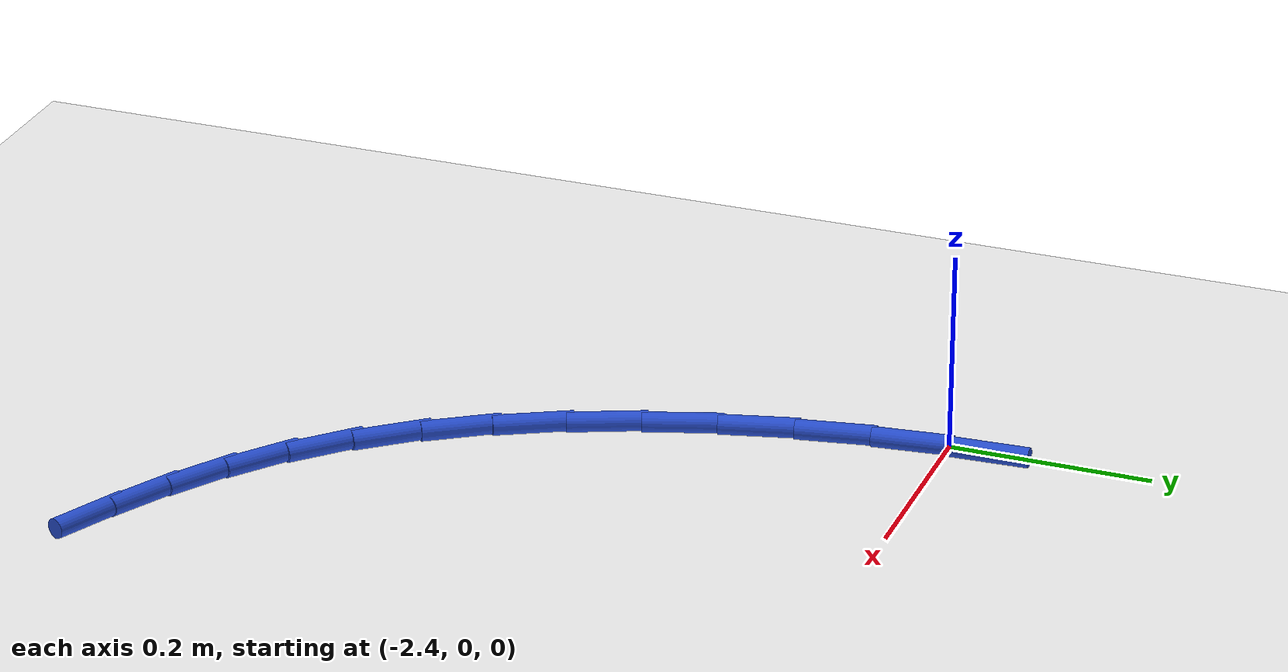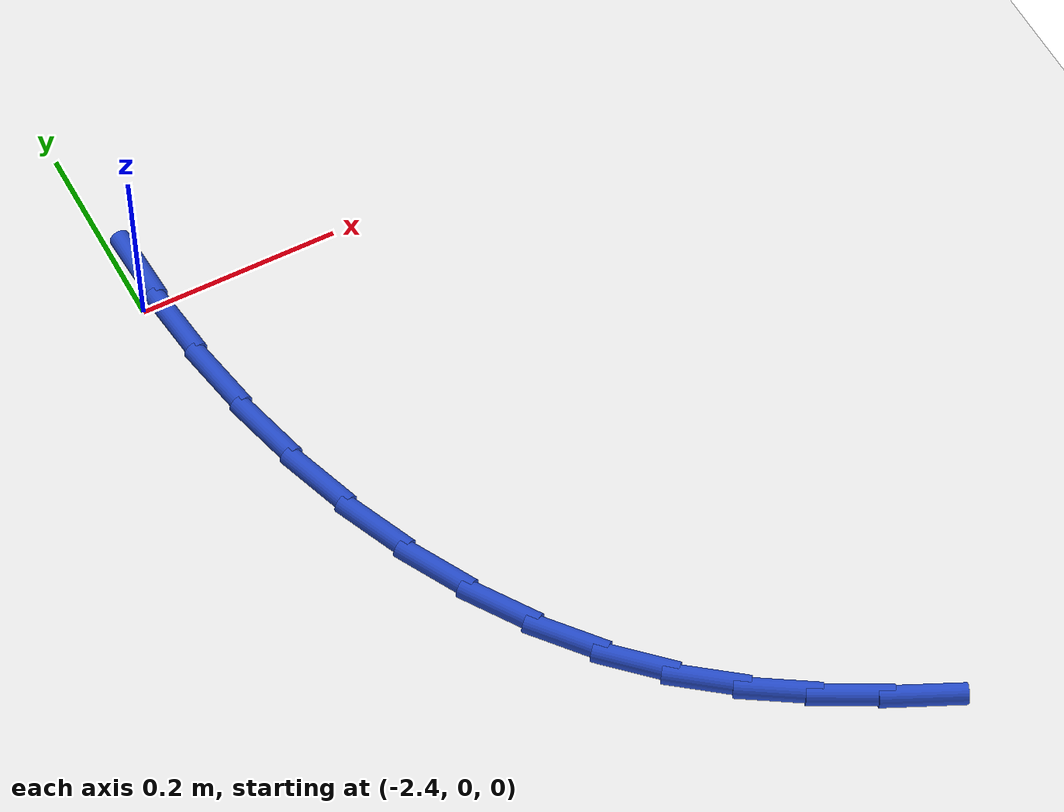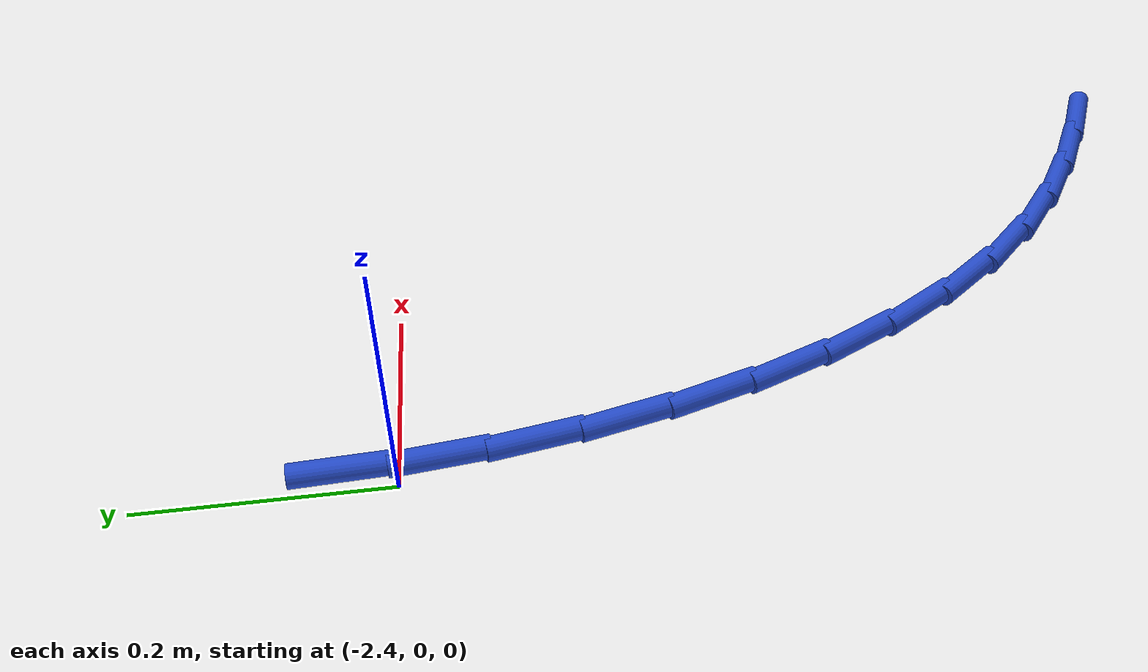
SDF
<sdf version="1.6">
 <world name="default">
  <model name="ground_plane">
   <static>1</static>
   <link name="link">
    <collision name="collision">
     <geometry><plane><normal>0 0 1</normal><size>100 100</size></plane></geometry>
     <surface><friction><ode><mu>100</mu><mu2>50</mu2></ode></friction></surface>
    </collision>
    <visual name="visual">
     <cast_shadows>0</cast_shadows>
     <geometry><plane><normal>0 0 1</normal><size>100 100</size></plane></geometry>
     <material>
      <script><uri>file://media/materials/scripts/gazebo.material</uri><name>Gazebo/WhiteGlow</name></script>
     </material>
    </visual>
   </link>
  </model>
  <model name="line">
   <link name="link_57">
    <pose>-2.3843738134277364 0.04370140006439744 0.01 0 1.57 -1.5233699292212008</pose>
    <collision name="collision">
     <geometry><cylinder><radius>0.01</radius><length>0.08</length></cylinder></geometry>
    </collision>
    <visual name="visual">
     <material>
      <script><name>Gazebo/Blue</name><uri>file://media/materials/scripts/gazebo.material</uri></script>
     </material>
     <geometry><cylinder><radius>0.01</radius><length>0.08</length></cylinder></geometry>
    </visual>
   </link>
   <link name="link_58">
    <pose>-2.38081747310368 -0.0312288861086547 0.01 0 1.57 -1.4555799037515125</pose>
    <collision name="collision">
     <geometry><cylinder><radius>0.01</radius><length>0.08</length></cylinder></geometry>
    </collision>
    <visual name="visual">
     <material>
      <script><name>Gazebo/Blue</name><uri>file://media/materials/scripts/gazebo.material</uri></script>
     </material>
     <geometry><cylinder><radius>0.01</radius><length>0.08</length></cylinder></geometry>
    </visual>
   </link>
   <link name="link_59">
    <pose>-2.3721855642037664 -0.10581616400279886 0.01 0 1.57 -1.387323152833374</pose>
    <collision name="collision">
     <geometry><cylinder><radius>0.01</radius><length>0.08</length></cylinder></geometry>
    </collision>
    <visual name="visual">
     <material>
      <script><name>Gazebo/Blue</name><uri>file://media/materials/scripts/gazebo.material</uri></script>
     </material>
     <geometry><cylinder><radius>0.01</radius><length>0.08</length></cylinder></geometry>
    </visual>
   </link>
   <link name="link_60">
    <pose>-2.358546847052495 -0.1793164745511217 0.01 0 1.57 -1.3171769646896714</pose>
    <collision name="collision">
     <geometry><cylinder><radius>0.01</radius><length>0.08</length></cylinder></geometry>
    </collision>
    <visual name="visual">
     <material>
      <script><name>Gazebo/Blue</name><uri>file://media/materials/scripts/gazebo.material</uri></script>
     </material>
     <geometry><cylinder><radius>0.01</radius><length>0.08</length></cylinder></geometry>
    </visual>
   </link>
   <link name="link_61">
    <pose>-2.339970081974366 -0.25098585868671364 0.01 0 1.57 -1.2436557070648493</pose>
    <collision name="collision">
     <geometry><cylinder><radius>0.01</radius><length>0.08</length></cylinder></geometry>
    </collision>
    <visual name="visual">
     <material>
      <script><name>Gazebo/Blue</name><uri>file://media/materials/scripts/gazebo.material</uri></script>
     </material>
     <geometry><cylinder><radius>0.01</radius><length>0.08</length></cylinder></geometry>
    </visual>
   </link>
   <link name="link_62">
    <pose>-2.3165240292938782 -0.3200803573426613 0.01 0 1.57 -1.1651724793037062</pose>
    <collision name="collision">
     <geometry><cylinder><radius>0.01</radius><length>0.08</length></cylinder></geometry>
    </collision>
    <visual name="visual">
     <material>
      <script><name>Gazebo/Blue</name><uri>file://media/materials/scripts/gazebo.material</uri></script>
     </material>
     <geometry><cylinder><radius>0.01</radius><length>0.08</length></cylinder></geometry>
    </visual>
   </link>
   <link name="link_63">
    <pose>-2.2882774493355336 -0.38585601145205534 0.01 0 1.57 -1.0800215280535146</pose>
    <collision name="collision">
     <geometry><cylinder><radius>0.01</radius><length>0.08</length></cylinder></geometry>
    </collision>
    <visual name="visual">
     <material>
      <script><name>Gazebo/Blue</name><uri>file://media/materials/scripts/gazebo.material</uri></script>
     </material>
     <geometry><cylinder><radius>0.01</radius><length>0.08</length></cylinder></geometry>
    </visual>
   </link>
   <link name="link_64">
    <pose>-2.25529910242383 -0.44756886194798223 0.01 0 1.57 -0.9864039169351552</pose>
    <collision name="collision">
     <geometry><cylinder><radius>0.01</radius><length>0.08</length></cylinder></geometry>
    </collision>
    <visual name="visual">
     <material>
      <script><name>Gazebo/Blue</name><uri>file://media/materials/scripts/gazebo.material</uri></script>
     </material>
     <geometry><cylinder><radius>0.01</radius><length>0.08</length></cylinder></geometry>
    </visual>
   </link>
   <link name="link_65">
    <pose>-2.217657748883269 -0.5044749497635317 0.01 0 1.57 -0.8825343036736734</pose>
    <collision name="collision">
     <geometry><cylinder><radius>0.01</radius><length>0.08</length></cylinder></geometry>
    </collision>
    <visual name="visual">
     <material>
      <script><name>Gazebo/Blue</name><uri>file://media/materials/scripts/gazebo.material</uri></script>
     </material>
     <geometry><cylinder><radius>0.01</radius><length>0.08</length></cylinder></geometry>
    </visual>
   </link>
   <link name="link_66">
    <pose>-2.1754221490383494 -0.5558303158317928 0.01 0 1.57 -0.7672234546027776</pose>
    <collision name="collision">
     <geometry><cylinder><radius>0.01</radius><length>0.08</length></cylinder></geometry>
    </collision>
    <visual name="visual">
     <material>
      <script><name>Gazebo/Blue</name><uri>file://media/materials/scripts/gazebo.material</uri></script>
     </material>
     <geometry><cylinder><radius>0.01</radius><length>0.08</length></cylinder></geometry>
    </visual>
   </link>
   <link name="link_67">
    <pose>-2.128669057099226 -0.6009141152103009 0.01 0 1.57 -0.6528867256795755</pose>
    <collision name="collision">
     <geometry><cylinder><radius>0.01</radius><length>0.08</length></cylinder></geometry>
    </collision>
    <visual name="visual">
     <material>
      <script><name>Gazebo/Blue</name><uri>file://media/materials/scripts/gazebo.material</uri></script>
     </material>
     <geometry><cylinder><radius>0.01</radius><length>0.08</length></cylinder></geometry>
    </visual>
   </link>
   <link name="link_68">
    <pose>-2.0777651662941223 -0.6398438545212966 0.01 0 1.57 -0.5585565188878565</pose>
    <collision name="collision">
     <geometry><cylinder><radius>0.01</radius><length>0.08</length></cylinder></geometry>
    </collision>
    <visual name="visual">
     <material>
      <script><name>Gazebo/Blue</name><uri>file://media/materials/scripts/gazebo.material</uri></script>
     </material>
     <geometry><cylinder><radius>0.01</radius><length>0.08</length></cylinder></geometry>
    </visual>
   </link>
   <link name="link_69">
    <pose>-2.0234421884708302 -0.6737924827793345 0.01 0 1.57 -0.4874210773290789</pose>
    <collision name="collision">
     <geometry><cylinder><radius>0.01</radius><length>0.08</length></cylinder></geometry>
    </collision>
    <visual name="visual">
     <material>
      <script><name>Gazebo/Blue</name><uri>file://media/materials/scripts/gazebo.material</uri></script>
     </material>
     <geometry><cylinder><radius>0.01</radius><length>0.08</length></cylinder></geometry>
    </visual>
   </link>
   <link name="link_70">
    <pose>-1.966455095334611 -0.7040002043067832 0.01 0 1.57 -0.439719457550735</pose>
    <collision name="collision">
     <geometry><cylinder><radius>0.01</radius><length>0.08</length></cylinder></geometry>
    </collision>
    <visual name="visual">
     <material>
      <script><name>Gazebo/Blue</name><uri>file://media/materials/scripts/gazebo.material</uri></script>
     </material>
     <geometry><cylinder><radius>0.01</radius><length>0.08</length></cylinder></geometry>
    </visual>
   </link>
  </model>
 </world>
</sdf>
